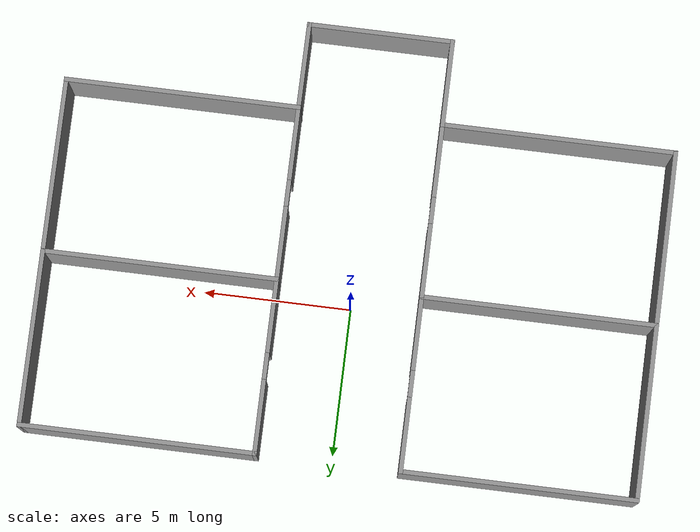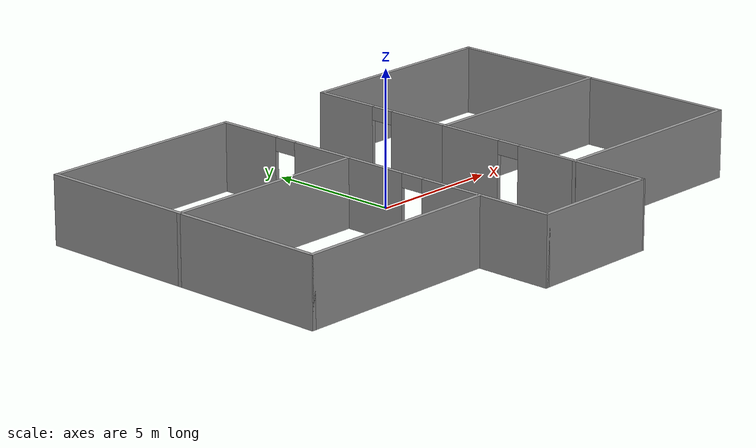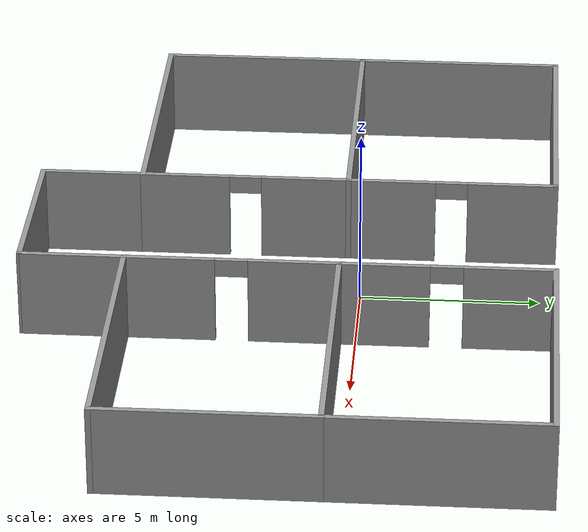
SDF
<?xml version='1.0'?>
<sdf version='1.6'>
  <model name='husky_SAGAT_first_half_docker'>
    <pose frame=''>0.103889 -1.87815 0 0 -0 0</pose>
    <link name='Wall_11'>
      <collision name='Wall_11_Collision'>
        <geometry>
          <box>
            <size>6 0.15 2.5</size>
          </box>
        </geometry>
        <pose frame=''>0 0 1.25 0 -0 0</pose>
      </collision>
      <visual name='Wall_11_Visual'>
        <pose frame=''>0 0 1.25 0 -0 0</pose>
        <geometry>
          <box>
            <size>6 0.15 2.5</size>
          </box>
        </geometry>
        <material>
          <script>
            <uri>file://media/materials/scripts/gazebo.material</uri>
            <name>Gazebo/Grey</name>
          </script>
          <ambient>1 1 1 1</ambient>
        </material>
        <meta>
          <layer>0</layer>
        </meta>
      </visual>
      <pose frame=''>-10.28 4.35013 0 0 -0 1.5708</pose>
    </link>
    <link name='Wall_12'>
      <collision name='Wall_12_Collision'>
        <geometry>
          <box>
            <size>8 0.15 2.5</size>
          </box>
        </geometry>
        <pose frame=''>0 0 1.25 0 -0 0</pose>
      </collision>
      <visual name='Wall_12_Visual'>
        <pose frame=''>0 0 1.25 0 -0 0</pose>
        <geometry>
          <box>
            <size>8 0.15 2.5</size>
          </box>
        </geometry>
        <material>
          <script>
            <uri>file://media/materials/scripts/gazebo.material</uri>
            <name>Gazebo/Grey</name>
          </script>
          <ambient>1 1 1 1</ambient>
        </material>
        <meta>
          <layer>0</layer>
        </meta>
      </visual>
      <pose frame=''>-6.355 7.27513 0 0 -0 0</pose>
    </link>
    <link name='Wall_13'>
      <pose frame=''>-2.43 4.35013 0 0 -0 -1.5708</pose>
      <visual name='Wall_13_Visual_0'>
        <pose frame=''>-1.72303 0 1.25 0 -0 0</pose>
        <geometry>
          <box>
            <size>2.55394 0.15 2.5</size>
          </box>
        </geometry>
        <material>
          <script>
            <uri>file://media/materials/scripts/gazebo.material</uri>
            <name>Gazebo/Grey</name>
          </script>
          <ambient>1 1 1 1</ambient>
        </material>
        <meta>
          <layer>0</layer>
        </meta>
      </visual>
      <collision name='Wall_13_Collision_0'>
        <geometry>
          <box>
            <size>2.55394 0.15 2.5</size>
          </box>
        </geometry>
        <pose frame=''>-1.72303 0 1.25 0 -0 0</pose>
      </collision>
      <visual name='Wall_13_Visual_1'>
        <pose frame=''>1.72697 0 1.25 0 -0 0</pose>
        <geometry>
          <box>
            <size>2.54606 0.15 2.5</size>
          </box>
        </geometry>
        <material>
          <script>
            <uri>file://media/materials/scripts/gazebo.material</uri>
            <name>Gazebo/Grey</name>
          </script>
          <ambient>1 1 1 1</ambient>
        </material>
        <meta>
          <layer>0</layer>
        </meta>
      </visual>
      <collision name='Wall_13_Collision_1'>
        <geometry>
          <box>
            <size>2.54606 0.15 2.5</size>
          </box>
        </geometry>
        <pose frame=''>1.72697 0 1.25 0 -0 0</pose>
      </collision>
      <visual name='Wall_13_Visual_2'>
        <pose frame=''>0.003939 0 2.25 0 -0 0</pose>
        <geometry>
          <box>
            <size>0.9 0.15 0.5</size>
          </box>
        </geometry>
        <material>
          <script>
            <uri>file://media/materials/scripts/gazebo.material</uri>
            <name>Gazebo/Grey</name>
          </script>
          <ambient>1 1 1 1</ambient>
        </material>
        <meta>
          <layer>0</layer>
        </meta>
      </visual>
      <collision name='Wall_13_Collision_2'>
        <geometry>
          <box>
            <size>0.9 0.15 0.5</size>
          </box>
        </geometry>
        <pose frame=''>0.003939 0 2.25 0 -0 0</pose>
      </collision>
    </link>
    <link name='Wall_16'>
      <collision name='Wall_16_Collision'>
        <geometry>
          <box>
            <size>0.16 0.15 2.5</size>
          </box>
        </geometry>
        <pose frame=''>0 0 1.25 0 -0 0</pose>
      </collision>
      <visual name='Wall_16_Visual'>
        <pose frame=''>0 0 1.25 0 -0 0</pose>
        <geometry>
          <box>
            <size>0.16 0.15 2.5</size>
          </box>
        </geometry>
        <material>
          <script>
            <uri>file://media/materials/scripts/gazebo.material</uri>
            <name>Gazebo/Grey</name>
          </script>
          <ambient>1 1 1 1</ambient>
        </material>
        <meta>
          <layer>0</layer>
        </meta>
      </visual>
      <pose frame=''>2.425 -4.42487 0 0 -0 0</pose>
    </link>
    <link name='Wall_17'>
      <pose frame=''>2.43 -1.49987 0 0 -0 1.5708</pose>
      <visual name='Wall_17_Visual_0'>
        <pose frame=''>-1.72228 0 1.25 0 -0 0</pose>
        <geometry>
          <box>
            <size>2.55545 0.15 2.5</size>
          </box>
        </geometry>
        <material>
          <script>
            <uri>file://media/materials/scripts/gazebo.material</uri>
            <name>Gazebo/Grey</name>
          </script>
          <ambient>1 1 1 1</ambient>
        </material>
        <meta>
          <layer>0</layer>
        </meta>
      </visual>
      <collision name='Wall_17_Collision_0'>
        <geometry>
          <box>
            <size>2.55545 0.15 2.5</size>
          </box>
        </geometry>
        <pose frame=''>-1.72228 0 1.25 0 -0 0</pose>
      </collision>
      <visual name='Wall_17_Visual_1'>
        <pose frame=''>1.72772 0 1.25 0 -0 0</pose>
        <geometry>
          <box>
            <size>2.54455 0.15 2.5</size>
          </box>
        </geometry>
        <material>
          <script>
            <uri>file://media/materials/scripts/gazebo.material</uri>
            <name>Gazebo/Grey</name>
          </script>
          <ambient>1 1 1 1</ambient>
        </material>
        <meta>
          <layer>0</layer>
        </meta>
      </visual>
      <collision name='Wall_17_Collision_1'>
        <geometry>
          <box>
            <size>2.54455 0.15 2.5</size>
          </box>
        </geometry>
        <pose frame=''>1.72772 0 1.25 0 -0 0</pose>
      </collision>
      <visual name='Wall_17_Visual_2'>
        <pose frame=''>0.005449 0 2.25 0 -0 0</pose>
        <geometry>
          <box>
            <size>0.9 0.15 0.5</size>
          </box>
        </geometry>
        <material>
          <script>
            <uri>file://media/materials/scripts/gazebo.material</uri>
            <name>Gazebo/Grey</name>
          </script>
          <ambient>1 1 1 1</ambient>
        </material>
        <meta>
          <layer>0</layer>
        </meta>
      </visual>
      <collision name='Wall_17_Collision_2'>
        <geometry>
          <box>
            <size>0.9 0.15 0.5</size>
          </box>
        </geometry>
        <pose frame=''>0.005449 0 2.25 0 -0 0</pose>
      </collision>
    </link>
    <link name='Wall_18'>
      <collision name='Wall_18_Collision'>
        <geometry>
          <box>
            <size>8 0.15 2.5</size>
          </box>
        </geometry>
        <pose frame=''>0 0 1.25 0 -0 0</pose>
      </collision>
      <visual name='Wall_18_Visual'>
        <pose frame=''>0 0 1.25 0 -0 0</pose>
        <geometry>
          <box>
            <size>8 0.15 2.5</size>
          </box>
        </geometry>
        <material>
          <script>
            <uri>file://media/materials/scripts/gazebo.material</uri>
            <name>Gazebo/Grey</name>
          </script>
          <ambient>1 1 1 1</ambient>
        </material>
        <meta>
          <layer>0</layer>
        </meta>
      </visual>
      <pose frame=''>6.355 1.42513 0 0 -0 0</pose>
    </link>
    <link name='Wall_19'>
      <collision name='Wall_19_Collision'>
        <geometry>
          <box>
            <size>6 0.15 2.5</size>
          </box>
        </geometry>
        <pose frame=''>0 0 1.25 0 -0 0</pose>
      </collision>
      <visual name='Wall_19_Visual'>
        <pose frame=''>0 0 1.25 0 -0 0</pose>
        <geometry>
          <box>
            <size>6 0.15 2.5</size>
          </box>
        </geometry>
        <material>
          <script>
            <uri>file://media/materials/scripts/gazebo.material</uri>
            <name>Gazebo/Grey</name>
          </script>
          <ambient>1 1 1 1</ambient>
        </material>
        <meta>
          <layer>0</layer>
        </meta>
      </visual>
      <pose frame=''>10.28 -1.49987 0 0 -0 -1.5708</pose>
    </link>
    <link name='Wall_20'>
      <collision name='Wall_20_Collision'>
        <geometry>
          <box>
            <size>8 0.15 2.5</size>
          </box>
        </geometry>
        <pose frame=''>0 0 1.25 0 -0 0</pose>
      </collision>
      <visual name='Wall_20_Visual'>
        <pose frame=''>0 0 1.25 0 -0 0</pose>
        <geometry>
          <box>
            <size>8 0.15 2.5</size>
          </box>
        </geometry>
        <material>
          <script>
            <uri>file://media/materials/scripts/gazebo.material</uri>
            <name>Gazebo/Grey</name>
          </script>
          <ambient>1 1 1 1</ambient>
        </material>
        <meta>
          <layer>0</layer>
        </meta>
      </visual>
      <pose frame=''>6.355 -4.42487 0 0 -0 3.14159</pose>
    </link>
    <link name='Wall_24'>
      <pose frame=''>2.43 4.35013 0 0 -0 1.5708</pose>
      <visual name='Wall_24_Visual_0'>
        <pose frame=''>-1.72718 0 1.25 0 -0 0</pose>
        <geometry>
          <box>
            <size>2.54563 0.15 2.5</size>
          </box>
        </geometry>
        <material>
          <script>
            <uri>file://media/materials/scripts/gazebo.material</uri>
            <name>Gazebo/Grey</name>
          </script>
          <ambient>1 1 1 1</ambient>
        </material>
        <meta>
          <layer>0</layer>
        </meta>
      </visual>
      <collision name='Wall_24_Collision_0'>
        <geometry>
          <box>
            <size>2.54563 0.15 2.5</size>
          </box>
        </geometry>
        <pose frame=''>-1.72718 0 1.25 0 -0 0</pose>
      </collision>
      <visual name='Wall_24_Visual_1'>
        <pose frame=''>1.72282 0 1.25 0 -0 0</pose>
        <geometry>
          <box>
            <size>2.55437 0.15 2.5</size>
          </box>
        </geometry>
        <material>
          <script>
            <uri>file://media/materials/scripts/gazebo.material</uri>
            <name>Gazebo/Grey</name>
          </script>
          <ambient>1 1 1 1</ambient>
        </material>
        <meta>
          <layer>0</layer>
        </meta>
      </visual>
      <collision name='Wall_24_Collision_1'>
        <geometry>
          <box>
            <size>2.55437 0.15 2.5</size>
          </box>
        </geometry>
        <pose frame=''>1.72282 0 1.25 0 -0 0</pose>
      </collision>
      <visual name='Wall_24_Visual_2'>
        <pose frame=''>-0.004369 0 2.25 0 -0 0</pose>
        <geometry>
          <box>
            <size>0.9 0.15 0.5</size>
          </box>
        </geometry>
        <material>
          <script>
            <uri>file://media/materials/scripts/gazebo.material</uri>
            <name>Gazebo/Grey</name>
          </script>
          <ambient>1 1 1 1</ambient>
        </material>
        <meta>
          <layer>0</layer>
        </meta>
      </visual>
      <collision name='Wall_24_Collision_2'>
        <geometry>
          <box>
            <size>0.9 0.15 0.5</size>
          </box>
        </geometry>
        <pose frame=''>-0.004369 0 2.25 0 -0 0</pose>
      </collision>
    </link>
    <link name='Wall_25'>
      <collision name='Wall_25_Collision'>
        <geometry>
          <box>
            <size>8 0.15 2.5</size>
          </box>
        </geometry>
        <pose frame=''>0 0 1.25 0 -0 0</pose>
      </collision>
      <visual name='Wall_25_Visual'>
        <pose frame=''>0 0 1.25 0 -0 0</pose>
        <geometry>
          <box>
            <size>8 0.15 2.5</size>
          </box>
        </geometry>
        <material>
          <script>
            <uri>file://media/materials/scripts/gazebo.material</uri>
            <name>Gazebo/Grey</name>
          </script>
          <ambient>1 1 1 1</ambient>
        </material>
        <meta>
          <layer>0</layer>
        </meta>
      </visual>
      <pose frame=''>6.355 7.27513 0 0 -0 0</pose>
    </link>
    <link name='Wall_26'>
      <collision name='Wall_26_Collision'>
        <geometry>
          <box>
            <size>6 0.15 2.5</size>
          </box>
        </geometry>
        <pose frame=''>0 0 1.25 0 -0 0</pose>
      </collision>
      <visual name='Wall_26_Visual'>
        <pose frame=''>0 0 1.25 0 -0 0</pose>
        <geometry>
          <box>
            <size>6 0.15 2.5</size>
          </box>
        </geometry>
        <material>
          <script>
            <uri>file://media/materials/scripts/gazebo.material</uri>
            <name>Gazebo/Grey</name>
          </script>
          <ambient>1 1 1 1</ambient>
        </material>
        <meta>
          <layer>0</layer>
        </meta>
      </visual>
      <pose frame=''>10.28 4.35013 0 0 -0 -1.5708</pose>
    </link>
    <link name='Wall_29'>
      <collision name='Wall_29_Collision'>
        <geometry>
          <box>
            <size>3 0.15 2.5</size>
          </box>
        </geometry>
        <pose frame=''>0 0 1.25 0 -0 0</pose>
      </collision>
      <visual name='Wall_29_Visual'>
        <pose frame=''>0 0 1.25 0 -0 0</pose>
        <geometry>
          <box>
            <size>3 0.15 2.5</size>
          </box>
        </geometry>
        <material>
          <script>
            <uri>file://media/materials/scripts/gazebo.material</uri>
            <name>Gazebo/Grey</name>
          </script>
          <ambient>1 1 1 1</ambient>
        </material>
        <meta>
          <layer>0</layer>
        </meta>
      </visual>
      <pose frame=''>-2.43 -5.84987 0 0 -0 -1.5708</pose>
    </link>
    <link name='Wall_30'>
      <collision name='Wall_30_Collision'>
        <geometry>
          <box>
            <size>5 0.15 2.5</size>
          </box>
        </geometry>
        <pose frame=''>0 0 1.25 0 -0 0</pose>
      </collision>
      <visual name='Wall_30_Visual'>
        <pose frame=''>0 0 1.25 0 -0 0</pose>
        <geometry>
          <box>
            <size>5 0.15 2.5</size>
          </box>
        </geometry>
        <material>
          <script>
            <uri>file://media/materials/scripts/gazebo.material</uri>
            <name>Gazebo/Grey</name>
          </script>
          <ambient>1 1 1 1</ambient>
        </material>
        <meta>
          <layer>0</layer>
        </meta>
      </visual>
      <pose frame=''>-0.005 -7.27487 0 0 -0 0</pose>
    </link>
    <link name='Wall_31'>
      <collision name='Wall_31_Collision'>
        <geometry>
          <box>
            <size>3.00002 0.15 2.5</size>
          </box>
        </geometry>
        <pose frame=''>0 0 1.25 0 -0 0</pose>
      </collision>
      <visual name='Wall_31_Visual'>
        <pose frame=''>0 0 1.25 0 -0 0</pose>
        <geometry>
          <box>
            <size>3.00002 0.15 2.5</size>
          </box>
        </geometry>
        <material>
          <script>
            <uri>file://media/materials/scripts/gazebo.material</uri>
            <name>Gazebo/Grey</name>
          </script>
          <ambient>1 1 1 1</ambient>
        </material>
        <meta>
          <layer>0</layer>
        </meta>
      </visual>
      <pose frame=''>2.425 -5.84987 0 0 -0 1.56729</pose>
    </link>
    <link name='Wall_4'>
      <collision name='Wall_4_Collision'>
        <geometry>
          <box>
            <size>8 0.15 2.5</size>
          </box>
        </geometry>
        <pose frame=''>0 0 1.25 0 -0 0</pose>
      </collision>
      <visual name='Wall_4_Visual'>
        <pose frame=''>0 0 1.25 0 -0 0</pose>
        <geometry>
          <box>
            <size>8 0.15 2.5</size>
          </box>
        </geometry>
        <material>
          <script>
            <uri>file://media/materials/scripts/gazebo.material</uri>
            <name>Gazebo/Grey</name>
          </script>
          <ambient>1 1 1 1</ambient>
        </material>
        <meta>
          <layer>0</layer>
        </meta>
      </visual>
      <pose frame=''>-6.355 -4.42487 0 0 -0 0</pose>
    </link>
    <link name='Wall_5'>
      <pose frame=''>-2.43 -1.49987 0 0 -0 1.5708</pose>
      <visual name='Wall_5_Visual_0'>
        <pose frame=''>-1.7262 0 1.25 0 -0 0</pose>
        <geometry>
          <box>
            <size>2.5476 0.15 2.5</size>
          </box>
        </geometry>
        <material>
          <script>
            <uri>file://media/materials/scripts/gazebo.material</uri>
            <name>Gazebo/Grey</name>
          </script>
          <ambient>1 1 1 1</ambient>
        </material>
        <meta>
          <layer>0</layer>
        </meta>
      </visual>
      <collision name='Wall_5_Collision_0'>
        <geometry>
          <box>
            <size>2.5476 0.15 2.5</size>
          </box>
        </geometry>
        <pose frame=''>-1.7262 0 1.25 0 -0 0</pose>
      </collision>
      <visual name='Wall_5_Visual_1'>
        <pose frame=''>1.7238 0 1.25 0 -0 0</pose>
        <geometry>
          <box>
            <size>2.5524 0.15 2.5</size>
          </box>
        </geometry>
        <material>
          <script>
            <uri>file://media/materials/scripts/gazebo.material</uri>
            <name>Gazebo/Grey</name>
          </script>
          <ambient>1 1 1 1</ambient>
        </material>
        <meta>
          <layer>0</layer>
        </meta>
      </visual>
      <collision name='Wall_5_Collision_1'>
        <geometry>
          <box>
            <size>2.5524 0.15 2.5</size>
          </box>
        </geometry>
        <pose frame=''>1.7238 0 1.25 0 -0 0</pose>
      </collision>
      <visual name='Wall_5_Visual_2'>
        <pose frame=''>-0.002396 0 2.25 0 -0 0</pose>
        <geometry>
          <box>
            <size>0.9 0.15 0.5</size>
          </box>
        </geometry>
        <material>
          <script>
            <uri>file://media/materials/scripts/gazebo.material</uri>
            <name>Gazebo/Grey</name>
          </script>
          <ambient>1 1 1 1</ambient>
        </material>
        <meta>
          <layer>0</layer>
        </meta>
      </visual>
      <collision name='Wall_5_Collision_2'>
        <geometry>
          <box>
            <size>0.9 0.15 0.5</size>
          </box>
        </geometry>
        <pose frame=''>-0.002396 0 2.25 0 -0 0</pose>
      </collision>
    </link>
    <link name='Wall_6'>
      <collision name='Wall_6_Collision'>
        <geometry>
          <box>
            <size>8 0.15 2.5</size>
          </box>
        </geometry>
        <pose frame=''>0 0 1.25 0 -0 0</pose>
      </collision>
      <visual name='Wall_6_Visual'>
        <pose frame=''>0 0 1.25 0 -0 0</pose>
        <geometry>
          <box>
            <size>8 0.15 2.5</size>
          </box>
        </geometry>
        <material>
          <script>
            <uri>file://media/materials/scripts/gazebo.material</uri>
            <name>Gazebo/Grey</name>
          </script>
          <ambient>1 1 1 1</ambient>
        </material>
        <meta>
          <layer>0</layer>
        </meta>
      </visual>
      <pose frame=''>-6.355 1.42513 0 0 -0 3.14159</pose>
    </link>
    <link name='Wall_7'>
      <collision name='Wall_7_Collision'>
        <geometry>
          <box>
            <size>6 0.15 2.5</size>
          </box>
        </geometry>
        <pose frame=''>0 0 1.25 0 -0 0</pose>
      </collision>
      <visual name='Wall_7_Visual'>
        <pose frame=''>0 0 1.25 0 -0 0</pose>
        <geometry>
          <box>
            <size>6 0.15 2.5</size>
          </box>
        </geometry>
        <material>
          <script>
            <uri>file://media/materials/scripts/gazebo.material</uri>
            <name>Gazebo/Grey</name>
          </script>
          <ambient>1 1 1 1</ambient>
        </material>
        <meta>
          <layer>0</layer>
        </meta>
      </visual>
      <pose frame=''>-10.28 -1.49987 0 0 -0 -1.5708</pose>
    </link>
    <static>1</static>
  </model>
</sdf>
